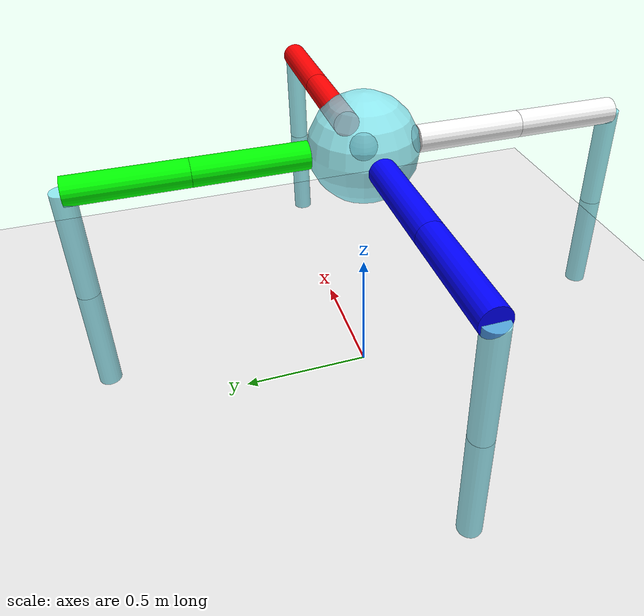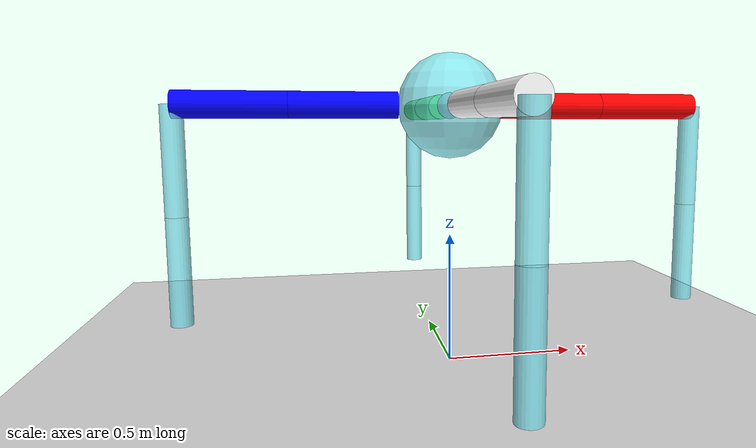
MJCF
<mujoco>
    <option gravity="0 0 -9.81"/>
    <worldbody>
        <light diffuse=".5 .5 .5" pos="0 0 3" dir="0 0 -1"/>
        <geom type="plane" size="5 5 0.1" rgba=".9 .9 .9 1"/>
        <body name="main" pos="0 0 1">
            <joint type="free"/>
            <geom type="sphere" size="0.2 0.2" rgba="0.486 0.917 0.97 0.75"/>  <!-- Changed shape to cylinder for spider body -->
            <site name="marker" pos="0 0 0" size="0.05"/>

            <!-- Define four spider legs -->
            <!-- red -->
            <body name="red-leg-upper-1" pos="0.4 0 0">
                <joint name="red-upper-joint-1" pos="-0.2 0 0" type="hinge" axis="0 1 0" range="-15 0"/>
                <geom type="cylinder" size="0.05 0.2" rgba="1 0 0 1" euler="0 90 0"/>
                <body name="red-upper-2" pos="0.4 0 0">
                    <joint name="red-upper-joint-2" pos="-0.2 0 0" type="hinge" axis="0 1 0" range="-15 0"/>
                    <geom type="cylinder" size="0.05 0.2" rgba="1 0 0 1" euler="0 90 0"/>
                    <body name="red-leg-lower-1" pos="0.2 0 -0.2">
                        <joint name="red-lower-joint-1" pos="0 0 0.2" type="hinge" axis="0 1 0" range="0 45"/>
                        <geom type="cylinder" size="0.04 0.2" pos="0 0 0" rgba="0.486 0.917 0.97 0.75"/>
                        <body name="red-lower-2" pos="0 0 -0.4">
                            <joint name="red-lower-joint-2" pos="0 0 0.2" type="hinge" axis="0 1 0" range="0 45"/>
                            <geom type="cylinder" size="0.04 0.2" pos="0 0 0" rgba="0.486 0.917 0.97 0.75"/>
                        </body>
                    </body>
                </body>
            </body>

            <!-- green -->
            <body name="green-leg-upper-1" pos="0 0.4 0">
                <joint name="green-upper-joint-1" pos="0 -0.2 0" type="hinge" axis="1 0 0" range="0 15"/>
                <geom type="cylinder" size="0.05 0.2" rgba="0 1 0 1" euler="90 0 0"/>
                <body name="green-upper-2" pos="0 0.4 0">
                    <joint name="green-upper-joint-2" pos="0 -0.2 0" type="hinge" axis="1 0 0" range="0 15"/>
                    <geom type="cylinder" size="0.05 0.2" rgba="0 1 0 1" euler="90 0 0"/>
                    <body name="green-leg-lower-1" pos="0 0.2 -0.2">
                        <joint name="green-lower-joint-1" pos="0 0 0.2" type="hinge" axis="1 0 0" range="-45 0"/>
                        <geom type="cylinder" size="0.04 0.2" pos="0 0 0" rgba="0.486 0.917 0.97 0.75"/>
                        <body name="green-lower-2" pos="0 0 -0.4">
                            <joint name="green-lower-joint-2" pos="0 0 0.2" type="hinge" axis="1 0 0" range="-45 0"/>
                            <geom type="cylinder" size="0.04 0.2" pos="0 0 0" rgba="0.486 0.917 0.97 0.75"/>
                        </body>
                    </body>
                </body>
            </body>

            <!-- blue -->
            <body name="blue-leg-upper-1" pos="-0.4 0 0">
                <joint name="blue-upper-joint-1" pos="0.2 0 0" type="hinge" axis="0 1 0" range="0 15"/>
                <geom type="cylinder" size="0.05 0.2" rgba="0 0 1 1" euler="0 -90 0"/>
                <body name="blue-upper-2" pos="-0.4 0 0">
                    <joint name="blue-upper-joint-2" pos="0.2 0 0" type="hinge" axis="0 1 0" range="0 15"/>
                    <geom type="cylinder" size="0.05 0.2" rgba="0 0 1 1" euler="0 -90 0"/>
                    <body name="blue-leg-lower-1" pos="-0.2 0 -0.2">
                        <joint name="blue-lower-joint-1" pos="0 0 0.2" type="hinge" axis="0 1 0" range="-45 0"/>
                        <geom type="cylinder" size="0.04 0.2" pos="0 0 0" rgba="0.486 0.917 0.97 0.75"/>
                        <body name="blue-lower-2" pos="0 0 -0.4">
                            <joint name="blue-lower-joint-2" pos="0 0 0.2" type="hinge" axis="0 1 0" range="-45 0"/>
                            <geom type="cylinder" size="0.04 0.2" pos="0 0 0" rgba="0.486 0.917 0.97 0.75"/>
                        </body>
                    </body>
                </body>
            </body>

            <!-- grey -->
            <body name="grey-leg-upper-1" pos="0 -0.4 0">
                <joint name="grey-upper-joint-1" pos="0 0.2 0" type="hinge" axis="1 0 0" range="-15 0"/>
                <geom type="cylinder" size="0.05 0.2" rgba="1 1 1 1" euler="-90 0 0"/>
                <body name="grey-upper-2" pos="0 -0.4 0">
                    <joint name="grey-upper-joint-2" pos="0 0.2 0" type="hinge" axis="1 0 0" range="-15 0"/>
                    <geom type="cylinder" size="0.05 0.2" rgba="1 1 1 1" euler="-90 0 0"/>
                    <body name="grey-leg-lower-1" pos="0 -0.2 -0.2">
                        <joint name="grey-lower-joint-1" pos="0 0 0.2" type="hinge" axis="1 0 0" range="-0 45"/>
                        <geom type="cylinder" size="0.04 0.2" pos="0 0 0" rgba="0.486 0.917 0.97 0.75"/>
                        <body name="grey-lower-2" pos="0 0 -0.4">
                            <joint name="grey-lower-joint-2" pos="0 0 0.2" type="hinge" axis="1 0 0" range="-0 45"/>
                            <geom type="cylinder" size="0.04 0.2" pos="0 0 0" rgba="0.486 0.917 0.97 0.75"/>
                        </body>
                    </body>
                </body>
            </body>
        </body>
    </worldbody>
    <sensor>
        <framepos objtype="site" objname="marker"/>
    </sensor>
    <actuator>
        <motor name="red-upper-motor-1" joint="red-upper-joint-1" />
        <motor name="red-upper-motor-2" joint="red-upper-joint-2" />
        <motor name="red-lower-motor-1" joint="red-lower-joint-1" />
        <motor name="red-lower-motor-2" joint="red-lower-joint-2" />
        <motor name="green-upper-motor-1" joint="green-upper-joint-1" />
        <motor name="green-upper-moto-2r" joint="green-upper-joint-2" />
        <motor name="green-lower-motor-1" joint="green-lower-joint-1" />
        <motor name="green-lower-motor-2" joint="green-lower-joint-2" />
        <motor name="blue-upper-motor-1" joint="blue-upper-joint-1" />
        <motor name="blue-upper-motor-2" joint="blue-upper-joint-2" />
        <motor name="blue-lower-motor-1" joint="blue-lower-joint-1" />
        <motor name="blue-lower-motor-2" joint="blue-lower-joint-2" />
        <motor name="grey-upper-motor-1" joint="grey-upper-joint-1" />
        <motor name="grey-upper-motor-2" joint="grey-upper-joint-2" />
        <motor name="grey-lower-motor-1" joint="grey-lower-joint-1" />
        <motor name="grey-lower-motor-2" joint="grey-lower-joint-2" />
    </actuator>
</mujoco>
